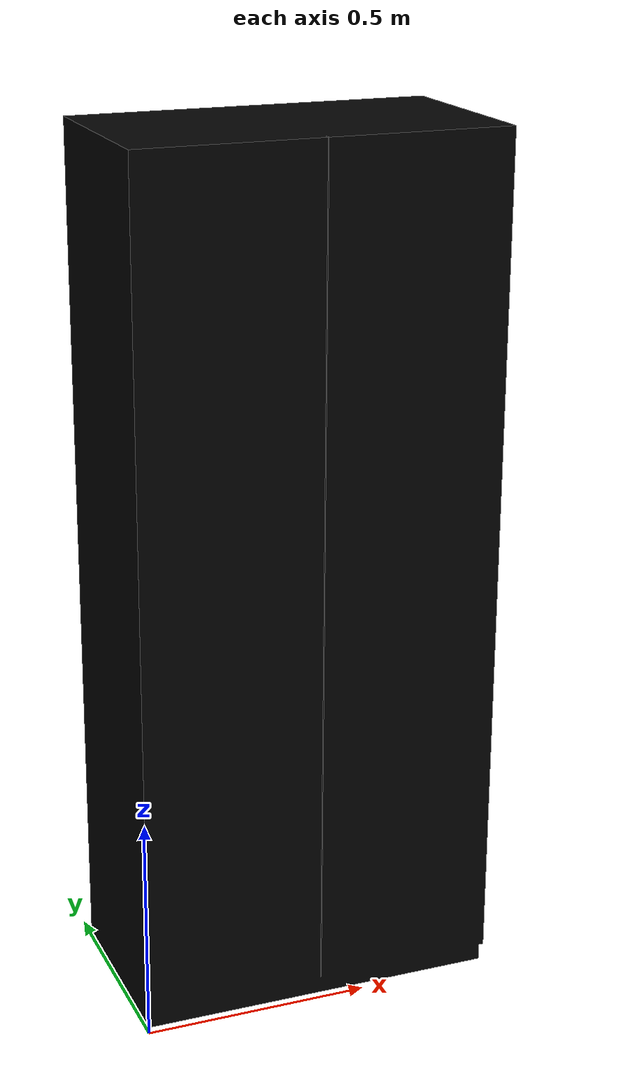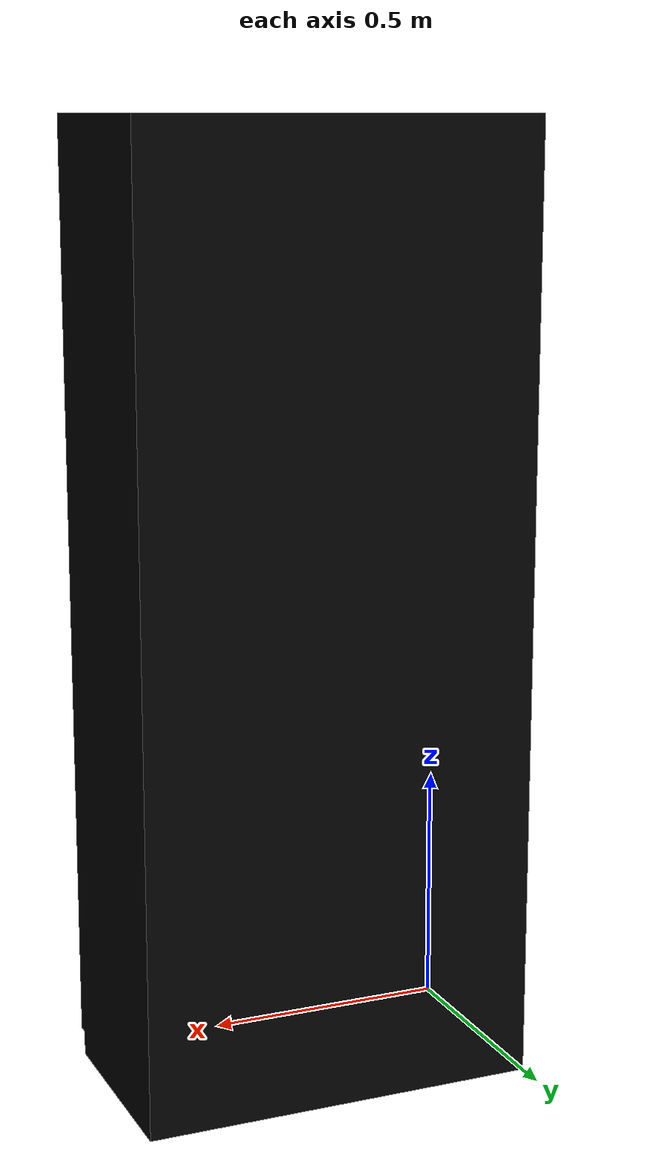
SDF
<?xml version="1.0" ?>
<sdf version="1.5">
  <model name="szafa">
    <static>true</static>
    <link name="link">
      <collision name="collision">
        <geometry>
          <mesh>
            <uri>model://szafa/meshes/Szafa.dae</uri>
          </mesh>
        </geometry>
      </collision>
      <visual name="visual">
        <geometry>
          <mesh>
            <uri>model://szafa/meshes/Szafa.dae</uri>
          </mesh>
        </geometry>
      </visual>
    </link>
  </model>
</sdf>
